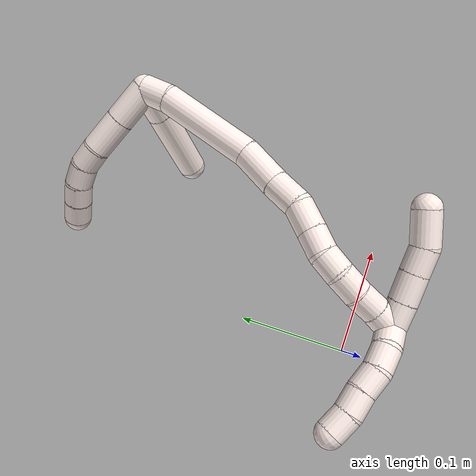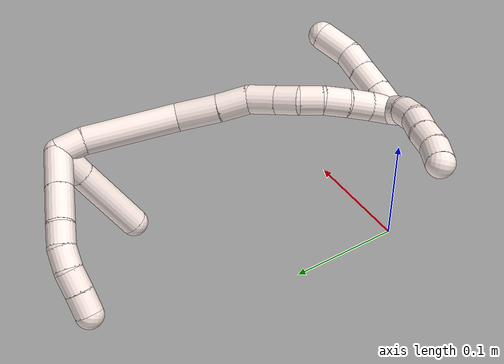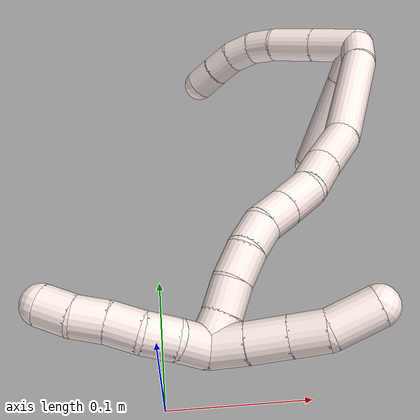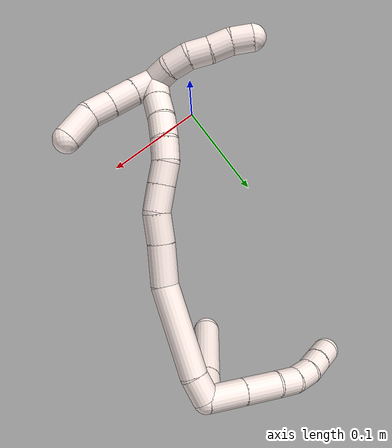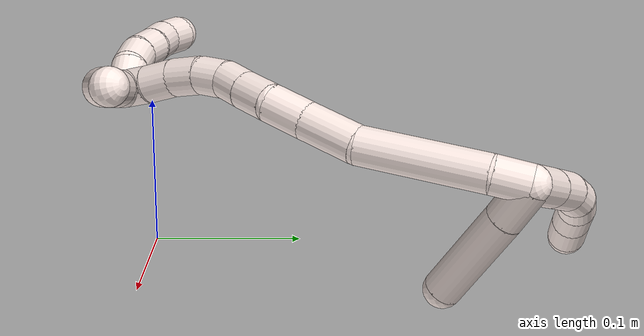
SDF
<sdf version="1.7">
 <world name="default">
  <model name="11">
   <static>0</static>
   <link name="11">
    <collision name="collision-cylinder-e_1_2_8">
     <pose>-0.011019 0.013648 -0.00313 -1.79625 -0.666743 0.820136</pose>
     <geometry><cylinder><radius>0.0125</radius><length>0.035637</length></cylinder></geometry>
     <surface>
      <friction><ode><mu>1.16</mu><mu2>1.16</mu2><slip1>0</slip1><slip2>0</slip2></ode></friction>
      <contact><ode><kp>1e+06</kp><kd>1</kd><max_vel>0</max_vel><min_depth>0.001</min_depth></ode></contact>
     </surface>
    </collision>
    <visual name="visual-cylinder-e_1_2_8">
     <pose>-0.011019 0.013648 -0.00313 -1.79625 -0.666743 0.820136</pose>
     <geometry><cylinder><radius>0.0125</radius><length>0.035637</length></cylinder></geometry>
     <material><ambient>1 0.933333 0.909804 1</ambient></material>
    </visual>
    <collision name="collision-cylinder-e_2_8_9">
     <pose>-0.032468 0.04028 -0.009276 -1.79899 -0.663901 0.818827</pose>
     <geometry><cylinder><radius>0.0125</radius><length>0.03385</length></cylinder></geometry>
     <surface>
      <friction><ode><mu>1.16</mu><mu2>1.16</mu2><slip1>0</slip1><slip2>0</slip2></ode></friction>
      <contact><ode><kp>1e+06</kp><kd>1</kd><max_vel>0</max_vel><min_depth>0.001</min_depth></ode></contact>
     </surface>
    </collision>
    <visual name="visual-cylinder-e_2_8_9">
     <pose>-0.032468 0.04028 -0.009276 -1.79899 -0.663901 0.818827</pose>
     <geometry><cylinder><radius>0.0125</radius><length>0.03385</length></cylinder></geometry>
     <material><ambient>1 0.933333 0.909804 1</ambient></material>
    </visual>
    <collision name="collision-cylinder-e_3_9_10">
     <pose>-0.047701 0.06197 -0.01444 -1.81282 -0.491853 0.620328</pose>
     <geometry><cylinder><radius>0.0125</radius><length>0.020344</length></cylinder></geometry>
     <surface>
      <friction><ode><mu>1.16</mu><mu2>1.16</mu2><slip1>0</slip1><slip2>0</slip2></ode></friction>
      <contact><ode><kp>1e+06</kp><kd>1</kd><max_vel>0</max_vel><min_depth>0.001</min_depth></ode></contact>
     </surface>
    </collision>
    <visual name="visual-cylinder-e_3_9_10">
     <pose>-0.047701 0.06197 -0.01444 -1.81282 -0.491853 0.620328</pose>
     <geometry><cylinder><radius>0.0125</radius><length>0.020344</length></cylinder></geometry>
     <material><ambient>1 0.933333 0.909804 1</ambient></material>
    </visual>
    <collision name="collision-cylinder-e_4_10_11">
     <pose>-0.056095 0.078884 -0.021107 -2.07387 -0.365909 0.606695</pose>
     <geometry><cylinder><radius>0.0125</radius><length>0.020068</length></cylinder></geometry>
     <surface>
      <friction><ode><mu>1.16</mu><mu2>1.16</mu2><slip1>0</slip1><slip2>0</slip2></ode></friction>
      <contact><ode><kp>1e+06</kp><kd>1</kd><max_vel>0</max_vel><min_depth>0.001</min_depth></ode></contact>
     </surface>
    </collision>
    <visual name="visual-cylinder-e_4_10_11">
     <pose>-0.056095 0.078884 -0.021107 -2.07387 -0.365909 0.606695</pose>
     <geometry><cylinder><radius>0.0125</radius><length>0.020068</length></cylinder></geometry>
     <material><ambient>1 0.933333 0.909804 1</ambient></material>
    </visual>
    <collision name="collision-cylinder-e_5_11_12">
     <pose>-0.061326 0.094962 -0.031598 -2.22017 -0.164601 0.329374</pose>
     <geometry><cylinder><radius>0.0125</radius><length>0.020031</length></cylinder></geometry>
     <surface>
      <friction><ode><mu>1.16</mu><mu2>1.16</mu2><slip1>0</slip1><slip2>0</slip2></ode></friction>
      <contact><ode><kp>1e+06</kp><kd>1</kd><max_vel>0</max_vel><min_depth>0.001</min_depth></ode></contact>
     </surface>
    </collision>
    <visual name="visual-cylinder-e_5_11_12">
     <pose>-0.061326 0.094962 -0.031598 -2.22017 -0.164601 0.329374</pose>
     <geometry><cylinder><radius>0.0125</radius><length>0.020031</length></cylinder></geometry>
     <material><ambient>1 0.933333 0.909804 1</ambient></material>
    </visual>
    <collision name="collision-cylinder-e_6_12_6">
     <pose>-0.064215 0.110938 -0.043354 -2.19027 -0.124706 0.241232</pose>
     <geometry><cylinder><radius>0.0125</radius><length>0.02007</length></cylinder></geometry>
     <surface>
      <friction><ode><mu>1.16</mu><mu2>1.16</mu2><slip1>0</slip1><slip2>0</slip2></ode></friction>
      <contact><ode><kp>1e+06</kp><kd>1</kd><max_vel>0</max_vel><min_depth>0.001</min_depth></ode></contact>
     </surface>
    </collision>
    <visual name="visual-cylinder-e_6_12_6">
     <pose>-0.064215 0.110938 -0.043354 -2.19027 -0.124706 0.241232</pose>
     <geometry><cylinder><radius>0.0125</radius><length>0.02007</length></cylinder></geometry>
     <material><ambient>1 0.933333 0.909804 1</ambient></material>
    </visual>
    <collision name="collision-cylinder-e_1_2_13">
     <pose>0.004868 0.008222 -0.011779 -2.53219 0.326715 -0.965474</pose>
     <geometry><cylinder><radius>0.0125</radius><length>0.030334</length></cylinder></geometry>
     <surface>
      <friction><ode><mu>1.16</mu><mu2>1.16</mu2><slip1>0</slip1><slip2>0</slip2></ode></friction>
      <contact><ode><kp>1e+06</kp><kd>1</kd><max_vel>0</max_vel><min_depth>0.001</min_depth></ode></contact>
     </surface>
    </collision>
    <visual name="visual-cylinder-e_1_2_13">
     <pose>0.004868 0.008222 -0.011779 -2.53219 0.326715 -0.965474</pose>
     <geometry><cylinder><radius>0.0125</radius><length>0.030334</length></cylinder></geometry>
     <material><ambient>1 0.933333 0.909804 1</ambient></material>
    </visual>
    <collision name="collision-cylinder-e_2_13_5">
     <pose>0.020045 0.034821 -0.051295 -2.55645 0.300474 -0.931386</pose>
     <geometry><cylinder><radius>0.0125</radius><length>0.069666</length></cylinder></geometry>
     <surface>
      <friction><ode><mu>1.16</mu><mu2>1.16</mu2><slip1>0</slip1><slip2>0</slip2></ode></friction>
      <contact><ode><kp>1e+06</kp><kd>1</kd><max_vel>0</max_vel><min_depth>0.001</min_depth></ode></contact>
     </surface>
    </collision>
    <visual name="visual-cylinder-e_2_13_5">
     <pose>0.020045 0.034821 -0.051295 -2.55645 0.300474 -0.931386</pose>
     <geometry><cylinder><radius>0.0125</radius><length>0.069666</length></cylinder></geometry>
     <material><ambient>1 0.933333 0.909804 1</ambient></material>
    </visual>
    <collision name="collision-cylinder-e_1_2_14">
     <pose>0.001077 -0.006911 -0.009638 2.51952 0.090595 0.280157</pose>
     <geometry><cylinder><radius>0.0125</radius><length>0.023818</length></cylinder></geometry>
     <surface>
      <friction><ode><mu>1.16</mu><mu2>1.16</mu2><slip1>0</slip1><slip2>0</slip2></ode></friction>
      <contact><ode><kp>1e+06</kp><kd>1</kd><max_vel>0</max_vel><min_depth>0.001</min_depth></ode></contact>
     </surface>
    </collision>
    <visual name="visual-cylinder-e_1_2_14">
     <pose>0.001077 -0.006911 -0.009638 2.51952 0.090595 0.280157</pose>
     <geometry><cylinder><radius>0.0125</radius><length>0.023818</length></cylinder></geometry>
     <material><ambient>1 0.933333 0.909804 1</ambient></material>
    </visual>
    <collision name="collision-cylinder-e_2_14_15">
     <pose>0.001856 -0.031863 -0.057088 2.69642 -0.007122 -0.031463</pose>
     <geometry><cylinder><radius>0.0125</radius><length>0.083792</length></cylinder></geometry>
     <surface>
      <friction><ode><mu>1.16</mu><mu2>1.16</mu2><slip1>0</slip1><slip2>0</slip2></ode></friction>
      <contact><ode><kp>1e+06</kp><kd>1</kd><max_vel>0</max_vel><min_depth>0.001</min_depth></ode></contact>
     </surface>
    </collision>
    <visual name="visual-cylinder-e_2_14_15">
     <pose>0.001856 -0.031863 -0.057088 2.69642 -0.007122 -0.031463</pose>
     <geometry><cylinder><radius>0.0125</radius><length>0.083792</length></cylinder></geometry>
     <material><ambient>1 0.933333 0.909804 1</ambient></material>
    </visual>
    <collision name="collision-cylinder-e_3_15_16">
     <pose>-0.003618 -0.057759 -0.111261 2.69397 -0.27783 -1.10165</pose>
     <geometry><cylinder><radius>0.0125</radius><length>0.037746</length></cylinder></geometry>
     <surface>
      <friction><ode><mu>1.16</mu><mu2>1.16</mu2><slip1>0</slip1><slip2>0</slip2></ode></friction>
      <contact><ode><kp>1e+06</kp><kd>1</kd><max_vel>0</max_vel><min_depth>0.001</min_depth></ode></contact>
     </surface>
    </collision>
    <visual name="visual-cylinder-e_3_15_16">
     <pose>-0.003618 -0.057759 -0.111261 2.69397 -0.27783 -1.10165</pose>
     <geometry><cylinder><radius>0.0125</radius><length>0.037746</length></cylinder></geometry>
     <material><ambient>1 0.933333 0.909804 1</ambient></material>
    </visual>
    <collision name="collision-cylinder-e_4_16_17">
     <pose>-0.012107 -0.072092 -0.139172 2.63045 -0.245142 -0.881129</pose>
     <geometry><cylinder><radius>0.0125</radius><length>0.0273</length></cylinder></geometry>
     <surface>
      <friction><ode><mu>1.16</mu><mu2>1.16</mu2><slip1>0</slip1><slip2>0</slip2></ode></friction>
      <contact><ode><kp>1e+06</kp><kd>1</kd><max_vel>0</max_vel><min_depth>0.001</min_depth></ode></contact>
     </surface>
    </collision>
    <visual name="visual-cylinder-e_4_16_17">
     <pose>-0.012107 -0.072092 -0.139172 2.63045 -0.245142 -0.881129</pose>
     <geometry><cylinder><radius>0.0125</radius><length>0.0273</length></cylinder></geometry>
     <material><ambient>1 0.933333 0.909804 1</ambient></material>
    </visual>
    <collision name="collision-cylinder-e_5_17_18">
     <pose>-0.020545 -0.080862 -0.1616 2.9339 -0.431928 -2.2546</pose>
     <geometry><cylinder><radius>0.0125</radius><length>0.024482</length></cylinder></geometry>
     <surface>
      <friction><ode><mu>1.16</mu><mu2>1.16</mu2><slip1>0</slip1><slip2>0</slip2></ode></friction>
      <contact><ode><kp>1e+06</kp><kd>1</kd><max_vel>0</max_vel><min_depth>0.001</min_depth></ode></contact>
     </surface>
    </collision>
    <visual name="visual-cylinder-e_5_17_18">
     <pose>-0.020545 -0.080862 -0.1616 2.9339 -0.431928 -2.2546</pose>
     <geometry><cylinder><radius>0.0125</radius><length>0.024482</length></cylinder></geometry>
     <material><ambient>1 0.933333 0.909804 1</ambient></material>
    </visual>
    <collision name="collision-cylinder-e_6_18_19">
     <pose>-0.03021 -0.085084 -0.181376 2.92807 -0.462621 -2.28755</pose>
     <geometry><cylinder><radius>0.0125</radius><length>0.02035</length></cylinder></geometry>
     <surface>
      <friction><ode><mu>1.16</mu><mu2>1.16</mu2><slip1>0</slip1><slip2>0</slip2></ode></friction>
      <contact><ode><kp>1e+06</kp><kd>1</kd><max_vel>0</max_vel><min_depth>0.001</min_depth></ode></contact>
     </surface>
    </collision>
    <visual name="visual-cylinder-e_6_18_19">
     <pose>-0.03021 -0.085084 -0.181376 2.92807 -0.462621 -2.28755</pose>
     <geometry><cylinder><radius>0.0125</radius><length>0.02035</length></cylinder></geometry>
     <material><ambient>1 0.933333 0.909804 1</ambient></material>
    </visual>
    <collision name="collision-cylinder-e_7_19_20">
     <pose>-0.03634 -0.089197 -0.199969 2.92004 -0.158534 -1.24029</pose>
     <geometry><cylinder><radius>0.0125</radius><length>0.020126</length></cylinder></geometry>
     <surface>
      <friction><ode><mu>1.16</mu><mu2>1.16</mu2><slip1>0</slip1><slip2>0</slip2></ode></friction>
      <contact><ode><kp>1e+06</kp><kd>1</kd><max_vel>0</max_vel><min_depth>0.001</min_depth></ode></contact>
     </surface>
    </collision>
    <visual name="visual-cylinder-e_7_19_20">
     <pose>-0.03634 -0.089197 -0.199969 2.92004 -0.158534 -1.24029</pose>
     <geometry><cylinder><radius>0.0125</radius><length>0.020126</length></cylinder></geometry>
     <material><ambient>1 0.933333 0.909804 1</ambient></material>
    </visual>
    <collision name="collision-cylinder-e_8_20_21">
     <pose>-0.037778 -0.092379 -0.220428 3.04915 0.013902 0.298313</pose>
     <geometry><cylinder><radius>0.0125</radius><length>0.021624</length></cylinder></geometry>
     <surface>
      <friction><ode><mu>1.16</mu><mu2>1.16</mu2><slip1>0</slip1><slip2>0</slip2></ode></friction>
      <contact><ode><kp>1e+06</kp><kd>1</kd><max_vel>0</max_vel><min_depth>0.001</min_depth></ode></contact>
     </surface>
    </collision>
    <visual name="visual-cylinder-e_8_20_21">
     <pose>-0.037778 -0.092379 -0.220428 3.04915 0.013902 0.298313</pose>
     <geometry><cylinder><radius>0.0125</radius><length>0.021624</length></cylinder></geometry>
     <material><ambient>1 0.933333 0.909804 1</ambient></material>
    </visual>
    <collision name="collision-cylinder-e_9_21_22">
     <pose>-0.035922 -0.093841 -0.241382 3.09606 0.165702 2.60629</pose>
     <geometry><cylinder><radius>0.0125</radius><length>0.020683</length></cylinder></geometry>
     <surface>
      <friction><ode><mu>1.16</mu><mu2>1.16</mu2><slip1>0</slip1><slip2>0</slip2></ode></friction>
      <contact><ode><kp>1e+06</kp><kd>1</kd><max_vel>0</max_vel><min_depth>0.001</min_depth></ode></contact>
     </surface>
    </collision>
    <visual name="visual-cylinder-e_9_21_22">
     <pose>-0.035922 -0.093841 -0.241382 3.09606 0.165702 2.60629</pose>
     <geometry><cylinder><radius>0.0125</radius><length>0.020683</length></cylinder></geometry>
     <material><ambient>1 0.933333 0.909804 1</ambient></material>
    </visual>
    <collision name="collision-cylinder-e_10_22_1">
     <pose>-0.033609 -0.094632 -0.261587 3.10901 0.060482 2.15351</pose>
     <geometry><cylinder><radius>0.0125</radius><length>0.020078</length></cylinder></geometry>
     <surface>
      <friction><ode><mu>1.16</mu><mu2>1.16</mu2><slip1>0</slip1><slip2>0</slip2></ode></friction>
      <contact><ode><kp>1e+06</kp><kd>1</kd><max_vel>0</max_vel><min_depth>0.001</min_depth></ode></contact>
     </surface>
    </collision>
    <visual name="visual-cylinder-e_10_22_1">
     <pose>-0.033609 -0.094632 -0.261587 3.10901 0.060482 2.15351</pose>
     <geometry><cylinder><radius>0.0125</radius><length>0.020078</length></cylinder></geometry>
     <material><ambient>1 0.933333 0.909804 1</ambient></material>
    </visual>
    <collision name="collision-cylinder-e_1_1_23">
     <pose>-0.042603 -0.095988 -0.274203 2.76461 -1.28732 -2.64363</pose>
     <geometry><cylinder><radius>0.0125</radius><length>0.02</length></cylinder></geometry>
     <surface>
      <friction><ode><mu>1.16</mu><mu2>1.16</mu2><slip1>0</slip1><slip2>0</slip2></ode></friction>
      <contact><ode><kp>1e+06</kp><kd>1</kd><max_vel>0</max_vel><min_depth>0.001</min_depth></ode></contact>
     </surface>
    </collision>
    <visual name="visual-cylinder-e_1_1_23">
     <pose>-0.042603 -0.095988 -0.274203 2.76461 -1.28732 -2.64363</pose>
     <geometry><cylinder><radius>0.0125</radius><length>0.02</length></cylinder></geometry>
     <material><ambient>1 0.933333 0.909804 1</ambient></material>
    </visual>
    <collision name="collision-cylinder-e_2_23_24">
     <pose>-0.061574 -0.095001 -0.279658 -2.52677 -1.21372 2.28379</pose>
     <geometry><cylinder><radius>0.0125</radius><length>0.02</length></cylinder></geometry>
     <surface>
      <friction><ode><mu>1.16</mu><mu2>1.16</mu2><slip1>0</slip1><slip2>0</slip2></ode></friction>
      <contact><ode><kp>1e+06</kp><kd>1</kd><max_vel>0</max_vel><min_depth>0.001</min_depth></ode></contact>
     </surface>
    </collision>
    <visual name="visual-cylinder-e_2_23_24">
     <pose>-0.061574 -0.095001 -0.279658 -2.52677 -1.21372 2.28379</pose>
     <geometry><cylinder><radius>0.0125</radius><length>0.02</length></cylinder></geometry>
     <material><ambient>1 0.933333 0.909804 1</ambient></material>
    </visual>
    <collision name="collision-cylinder-e_3_24_25">
     <pose>-0.079688 -0.088417 -0.284144 -1.91354 -1.06438 1.39185</pose>
     <geometry><cylinder><radius>0.0125</radius><length>0.02</length></cylinder></geometry>
     <surface>
      <friction><ode><mu>1.16</mu><mu2>1.16</mu2><slip1>0</slip1><slip2>0</slip2></ode></friction>
      <contact><ode><kp>1e+06</kp><kd>1</kd><max_vel>0</max_vel><min_depth>0.001</min_depth></ode></contact>
     </surface>
    </collision>
    <visual name="visual-cylinder-e_3_24_25">
     <pose>-0.079688 -0.088417 -0.284144 -1.91354 -1.06438 1.39185</pose>
     <geometry><cylinder><radius>0.0125</radius><length>0.02</length></cylinder></geometry>
     <material><ambient>1 0.933333 0.909804 1</ambient></material>
    </visual>
    <collision name="collision-cylinder-e_4_25_26">
     <pose>-0.096994 -0.079599 -0.288716 -2.17635 -1.02767 1.64511</pose>
     <geometry><cylinder><radius>0.0125</radius><length>0.02</length></cylinder></geometry>
     <surface>
      <friction><ode><mu>1.16</mu><mu2>1.16</mu2><slip1>0</slip1><slip2>0</slip2></ode></friction>
      <contact><ode><kp>1e+06</kp><kd>1</kd><max_vel>0</max_vel><min_depth>0.001</min_depth></ode></contact>
     </surface>
    </collision>
    <visual name="visual-cylinder-e_4_25_26">
     <pose>-0.096994 -0.079599 -0.288716 -2.17635 -1.02767 1.64511</pose>
     <geometry><cylinder><radius>0.0125</radius><length>0.02</length></cylinder></geometry>
     <material><ambient>1 0.933333 0.909804 1</ambient></material>
    </visual>
    <collision name="collision-cylinder-e_5_26_4">
     <pose>-0.113868 -0.069899 -0.292741 -1.76693 -0.981565 1.15418</pose>
     <geometry><cylinder><radius>0.0125</radius><length>0.02</length></cylinder></geometry>
     <surface>
      <friction><ode><mu>1.16</mu><mu2>1.16</mu2><slip1>0</slip1><slip2>0</slip2></ode></friction>
      <contact><ode><kp>1e+06</kp><kd>1</kd><max_vel>0</max_vel><min_depth>0.001</min_depth></ode></contact>
     </surface>
    </collision>
    <visual name="visual-cylinder-e_5_26_4">
     <pose>-0.113868 -0.069899 -0.292741 -1.76693 -0.981565 1.15418</pose>
     <geometry><cylinder><radius>0.0125</radius><length>0.02</length></cylinder></geometry>
     <material><ambient>1 0.933333 0.909804 1</ambient></material>
    </visual>
    <collision name="collision-cylinder-e_1_1_27">
     <pose>-0.025634 -0.101555 -0.265913 0.85917 0.702073 0.332434</pose>
     <geometry><cylinder><radius>0.0125</radius><length>0.022819</length></cylinder></geometry>
     <surface>
      <friction><ode><mu>1.16</mu><mu2>1.16</mu2><slip1>0</slip1><slip2>0</slip2></ode></friction>
      <contact><ode><kp>1e+06</kp><kd>1</kd><max_vel>0</max_vel><min_depth>0.001</min_depth></ode></contact>
     </surface>
    </collision>
    <visual name="visual-cylinder-e_1_1_27">
     <pose>-0.025634 -0.101555 -0.265913 0.85917 0.702073 0.332434</pose>
     <geometry><cylinder><radius>0.0125</radius><length>0.022819</length></cylinder></geometry>
     <material><ambient>1 0.933333 0.909804 1</ambient></material>
    </visual>
    <collision name="collision-cylinder-e_2_27_28">
     <pose>-0.010431 -0.115047 -0.253611 0.806264 0.686839 0.302684</pose>
     <geometry><cylinder><radius>0.0125</radius><length>0.024712</length></cylinder></geometry>
     <surface>
      <friction><ode><mu>1.16</mu><mu2>1.16</mu2><slip1>0</slip1><slip2>0</slip2></ode></friction>
      <contact><ode><kp>1e+06</kp><kd>1</kd><max_vel>0</max_vel><min_depth>0.001</min_depth></ode></contact>
     </surface>
    </collision>
    <visual name="visual-cylinder-e_2_27_28">
     <pose>-0.010431 -0.115047 -0.253611 0.806264 0.686839 0.302684</pose>
     <geometry><cylinder><radius>0.0125</radius><length>0.024712</length></cylinder></geometry>
     <material><ambient>1 0.933333 0.909804 1</ambient></material>
    </visual>
    <collision name="collision-cylinder-e_3_28_29">
     <pose>0.004234 -0.128342 -0.24113 0.828749 0.666598 0.302238</pose>
     <geometry><cylinder><radius>0.0125</radius><length>0.022093</length></cylinder></geometry>
     <surface>
      <friction><ode><mu>1.16</mu><mu2>1.16</mu2><slip1>0</slip1><slip2>0</slip2></ode></friction>
      <contact><ode><kp>1e+06</kp><kd>1</kd><max_vel>0</max_vel><min_depth>0.001</min_depth></ode></contact>
     </surface>
    </collision>
    <visual name="visual-cylinder-e_3_28_29">
     <pose>0.004234 -0.128342 -0.24113 0.828749 0.666598 0.302238</pose>
     <geometry><cylinder><radius>0.0125</radius><length>0.022093</length></cylinder></geometry>
     <material><ambient>1 0.933333 0.909804 1</ambient></material>
    </visual>
    <collision name="collision-cylinder-e_4_29_3">
     <pose>0.018671 -0.140471 -0.223431 0.45097 0.52454 0.123003</pose>
     <geometry><cylinder><radius>0.0125</radius><length>0.030376</length></cylinder></geometry>
     <surface>
      <friction><ode><mu>1.16</mu><mu2>1.16</mu2><slip1>0</slip1><slip2>0</slip2></ode></friction>
      <contact><ode><kp>1e+06</kp><kd>1</kd><max_vel>0</max_vel><min_depth>0.001</min_depth></ode></contact>
     </surface>
    </collision>
    <visual name="visual-cylinder-e_4_29_3">
     <pose>0.018671 -0.140471 -0.223431 0.45097 0.52454 0.123003</pose>
     <geometry><cylinder><radius>0.0125</radius><length>0.030376</length></cylinder></geometry>
     <material><ambient>1 0.933333 0.909804 1</ambient></material>
    </visual>
    <collision name="collision-sphere-3">
     <pose>0.026277 -0.1462 -0.211599 0 -0 0</pose>
     <geometry><sphere><radius>0.0125</radius></sphere></geometry>
     <surface>
      <friction><ode><mu>1.16</mu><mu2>1.16</mu2><slip1>0</slip1><slip2>0</slip2></ode></friction>
      <contact><ode><kp>1e+06</kp><kd>1</kd><max_vel>0</max_vel><min_depth>0.001</min_depth></ode></contact>
     </surface>
    </collision>
    <visual name="visual-sphere-3">
     <pose>0.026277 -0.1462 -0.211599 0 -0 0</pose>
     <geometry><sphere><radius>0.0125</radius></sphere></geometry>
     <material><ambient>1 0.933333 0.909804 1</ambient></material>
    </visual>
    <collision name="collision-sphere-29">
     <pose>0.011064 -0.134741 -0.235263 0 -0 0</pose>
     <geometry><sphere><radius>0.0125</radius></sphere></geometry>
     <surface>
      <friction><ode><mu>1.16</mu><mu2>1.16</mu2><slip1>0</slip1><slip2>0</slip2></ode></friction>
      <contact><ode><kp>1e+06</kp><kd>1</kd><max_vel>0</max_vel><min_depth>0.001</min_depth></ode></contact>
     </surface>
    </collision>
    <visual name="visual-sphere-29">
     <pose>0.011064 -0.134741 -0.235263 0 -0 0</pose>
     <geometry><sphere><radius>0.0125</radius></sphere></geometry>
     <material><ambient>1 0.933333 0.909804 1</ambient></material>
    </visual>
    <collision name="collision-sphere-28">
     <pose>-0.002596 -0.121943 -0.246997 0 -0 0</pose>
     <geometry><sphere><radius>0.0125</radius></sphere></geometry>
     <surface>
      <friction><ode><mu>1.16</mu><mu2>1.16</mu2><slip1>0</slip1><slip2>0</slip2></ode></friction>
      <contact><ode><kp>1e+06</kp><kd>1</kd><max_vel>0</max_vel><min_depth>0.001</min_depth></ode></contact>
     </surface>
    </collision>
    <visual name="visual-sphere-28">
     <pose>-0.002596 -0.121943 -0.246997 0 -0 0</pose>
     <geometry><sphere><radius>0.0125</radius></sphere></geometry>
     <material><ambient>1 0.933333 0.909804 1</ambient></material>
    </visual>
    <collision name="collision-sphere-27">
     <pose>-0.018266 -0.108152 -0.260224 0 -0 0</pose>
     <geometry><sphere><radius>0.0125</radius></sphere></geometry>
     <surface>
      <friction><ode><mu>1.16</mu><mu2>1.16</mu2><slip1>0</slip1><slip2>0</slip2></ode></friction>
      <contact><ode><kp>1e+06</kp><kd>1</kd><max_vel>0</max_vel><min_depth>0.001</min_depth></ode></contact>
     </surface>
    </collision>
    <visual name="visual-sphere-27">
     <pose>-0.018266 -0.108152 -0.260224 0 -0 0</pose>
     <geometry><sphere><radius>0.0125</radius></sphere></geometry>
     <material><ambient>1 0.933333 0.909804 1</ambient></material>
    </visual>
    <collision name="collision-sphere-4">
     <pose>-0.122182 -0.064449 -0.293824 0 -0 0</pose>
     <geometry><sphere><radius>0.0125</radius></sphere></geometry>
     <surface>
      <friction><ode><mu>1.16</mu><mu2>1.16</mu2><slip1>0</slip1><slip2>0</slip2></ode></friction>
      <contact><ode><kp>1e+06</kp><kd>1</kd><max_vel>0</max_vel><min_depth>0.001</min_depth></ode></contact>
     </surface>
    </collision>
    <visual name="visual-sphere-4">
     <pose>-0.122182 -0.064449 -0.293824 0 -0 0</pose>
     <geometry><sphere><radius>0.0125</radius></sphere></geometry>
     <material><ambient>1 0.933333 0.909804 1</ambient></material>
    </visual>
    <collision name="collision-sphere-26">
     <pose>-0.105555 -0.07535 -0.291658 0 -0 0</pose>
     <geometry><sphere><radius>0.0125</radius></sphere></geometry>
     <surface>
      <friction><ode><mu>1.16</mu><mu2>1.16</mu2><slip1>0</slip1><slip2>0</slip2></ode></friction>
      <contact><ode><kp>1e+06</kp><kd>1</kd><max_vel>0</max_vel><min_depth>0.001</min_depth></ode></contact>
     </surface>
    </collision>
    <visual name="visual-sphere-26">
     <pose>-0.105555 -0.07535 -0.291658 0 -0 0</pose>
     <geometry><sphere><radius>0.0125</radius></sphere></geometry>
     <material><ambient>1 0.933333 0.909804 1</ambient></material>
    </visual>
    <collision name="collision-sphere-25">
     <pose>-0.088433 -0.083848 -0.285774 0 -0 0</pose>
     <geometry><sphere><radius>0.0125</radius></sphere></geometry>
     <surface>
      <friction><ode><mu>1.16</mu><mu2>1.16</mu2><slip1>0</slip1><slip2>0</slip2></ode></friction>
      <contact><ode><kp>1e+06</kp><kd>1</kd><max_vel>0</max_vel><min_depth>0.001</min_depth></ode></contact>
     </surface>
    </collision>
    <visual name="visual-sphere-25">
     <pose>-0.088433 -0.083848 -0.285774 0 -0 0</pose>
     <geometry><sphere><radius>0.0125</radius></sphere></geometry>
     <material><ambient>1 0.933333 0.909804 1</ambient></material>
    </visual>
    <collision name="collision-sphere-24">
     <pose>-0.070943 -0.092985 -0.282514 0 -0 0</pose>
     <geometry><sphere><radius>0.0125</radius></sphere></geometry>
     <surface>
      <friction><ode><mu>1.16</mu><mu2>1.16</mu2><slip1>0</slip1><slip2>0</slip2></ode></friction>
      <contact><ode><kp>1e+06</kp><kd>1</kd><max_vel>0</max_vel><min_depth>0.001</min_depth></ode></contact>
     </surface>
    </collision>
    <visual name="visual-sphere-24">
     <pose>-0.070943 -0.092985 -0.282514 0 -0 0</pose>
     <geometry><sphere><radius>0.0125</radius></sphere></geometry>
     <material><ambient>1 0.933333 0.909804 1</ambient></material>
    </visual>
    <collision name="collision-sphere-23">
     <pose>-0.052204 -0.097017 -0.276803 0 -0 0</pose>
     <geometry><sphere><radius>0.0125</radius></sphere></geometry>
     <surface>
      <friction><ode><mu>1.16</mu><mu2>1.16</mu2><slip1>0</slip1><slip2>0</slip2></ode></friction>
      <contact><ode><kp>1e+06</kp><kd>1</kd><max_vel>0</max_vel><min_depth>0.001</min_depth></ode></contact>
     </surface>
    </collision>
    <visual name="visual-sphere-23">
     <pose>-0.052204 -0.097017 -0.276803 0 -0 0</pose>
     <geometry><sphere><radius>0.0125</radius></sphere></geometry>
     <material><ambient>1 0.933333 0.909804 1</ambient></material>
    </visual>
    <collision name="collision-sphere-1">
     <pose>-0.033003 -0.094958 -0.271602 0 -0 0</pose>
     <geometry><sphere><radius>0.0125</radius></sphere></geometry>
     <surface>
      <friction><ode><mu>1.16</mu><mu2>1.16</mu2><slip1>0</slip1><slip2>0</slip2></ode></friction>
      <contact><ode><kp>1e+06</kp><kd>1</kd><max_vel>0</max_vel><min_depth>0.001</min_depth></ode></contact>
     </surface>
    </collision>
    <visual name="visual-sphere-1">
     <pose>-0.033003 -0.094958 -0.271602 0 -0 0</pose>
     <geometry><sphere><radius>0.0125</radius></sphere></geometry>
     <material><ambient>1 0.933333 0.909804 1</ambient></material>
    </visual>
    <collision name="collision-sphere-22">
     <pose>-0.034216 -0.094305 -0.251571 0 -0 0</pose>
     <geometry><sphere><radius>0.0125</radius></sphere></geometry>
     <surface>
      <friction><ode><mu>1.16</mu><mu2>1.16</mu2><slip1>0</slip1><slip2>0</slip2></ode></friction>
      <contact><ode><kp>1e+06</kp><kd>1</kd><max_vel>0</max_vel><min_depth>0.001</min_depth></ode></contact>
     </surface>
    </collision>
    <visual name="visual-sphere-22">
     <pose>-0.034216 -0.094305 -0.251571 0 -0 0</pose>
     <geometry><sphere><radius>0.0125</radius></sphere></geometry>
     <material><ambient>1 0.933333 0.909804 1</ambient></material>
    </visual>
    <collision name="collision-sphere-21">
     <pose>-0.037628 -0.093377 -0.231193 0 -0 0</pose>
     <geometry><sphere><radius>0.0125</radius></sphere></geometry>
     <surface>
      <friction><ode><mu>1.16</mu><mu2>1.16</mu2><slip1>0</slip1><slip2>0</slip2></ode></friction>
      <contact><ode><kp>1e+06</kp><kd>1</kd><max_vel>0</max_vel><min_depth>0.001</min_depth></ode></contact>
     </surface>
    </collision>
    <visual name="visual-sphere-21">
     <pose>-0.037628 -0.093377 -0.231193 0 -0 0</pose>
     <geometry><sphere><radius>0.0125</radius></sphere></geometry>
     <material><ambient>1 0.933333 0.909804 1</ambient></material>
    </visual>
    <collision name="collision-sphere-12">
     <pose>-0.062967 0.102831 -0.037573 0 -0 0</pose>
     <geometry><sphere><radius>0.0125</radius></sphere></geometry>
     <surface>
      <friction><ode><mu>1.16</mu><mu2>1.16</mu2><slip1>0</slip1><slip2>0</slip2></ode></friction>
      <contact><ode><kp>1e+06</kp><kd>1</kd><max_vel>0</max_vel><min_depth>0.001</min_depth></ode></contact>
     </surface>
    </collision>
    <visual name="visual-sphere-12">
     <pose>-0.062967 0.102831 -0.037573 0 -0 0</pose>
     <geometry><sphere><radius>0.0125</radius></sphere></geometry>
     <material><ambient>1 0.933333 0.909804 1</ambient></material>
    </visual>
    <collision name="collision-sphere-11">
     <pose>-0.059685 0.087092 -0.025624 0 -0 0</pose>
     <geometry><sphere><radius>0.0125</radius></sphere></geometry>
     <surface>
      <friction><ode><mu>1.16</mu><mu2>1.16</mu2><slip1>0</slip1><slip2>0</slip2></ode></friction>
      <contact><ode><kp>1e+06</kp><kd>1</kd><max_vel>0</max_vel><min_depth>0.001</min_depth></ode></contact>
     </surface>
    </collision>
    <visual name="visual-sphere-11">
     <pose>-0.059685 0.087092 -0.025624 0 -0 0</pose>
     <geometry><sphere><radius>0.0125</radius></sphere></geometry>
     <material><ambient>1 0.933333 0.909804 1</ambient></material>
    </visual>
    <collision name="collision-sphere-10">
     <pose>-0.052505 0.070675 -0.016589 0 -0 0</pose>
     <geometry><sphere><radius>0.0125</radius></sphere></geometry>
     <surface>
      <friction><ode><mu>1.16</mu><mu2>1.16</mu2><slip1>0</slip1><slip2>0</slip2></ode></friction>
      <contact><ode><kp>1e+06</kp><kd>1</kd><max_vel>0</max_vel><min_depth>0.001</min_depth></ode></contact>
     </surface>
    </collision>
    <visual name="visual-sphere-10">
     <pose>-0.052505 0.070675 -0.016589 0 -0 0</pose>
     <geometry><sphere><radius>0.0125</radius></sphere></geometry>
     <material><ambient>1 0.933333 0.909804 1</ambient></material>
    </visual>
    <collision name="collision-sphere-9">
     <pose>-0.042897 0.053265 -0.012291 0 -0 0</pose>
     <geometry><sphere><radius>0.0125</radius></sphere></geometry>
     <surface>
      <friction><ode><mu>1.16</mu><mu2>1.16</mu2><slip1>0</slip1><slip2>0</slip2></ode></friction>
      <contact><ode><kp>1e+06</kp><kd>1</kd><max_vel>0</max_vel><min_depth>0.001</min_depth></ode></contact>
     </surface>
    </collision>
    <visual name="visual-sphere-9">
     <pose>-0.042897 0.053265 -0.012291 0 -0 0</pose>
     <geometry><sphere><radius>0.0125</radius></sphere></geometry>
     <material><ambient>1 0.933333 0.909804 1</ambient></material>
    </visual>
    <collision name="collision-sphere-2">
     <geometry><sphere><radius>0.0125</radius></sphere></geometry>
     <surface>
      <friction><ode><mu>1.16</mu><mu2>1.16</mu2><slip1>0</slip1><slip2>0</slip2></ode></friction>
      <contact><ode><kp>1e+06</kp><kd>1</kd><max_vel>0</max_vel><min_depth>0.001</min_depth></ode></contact>
     </surface>
    </collision>
    <visual name="visual-sphere-2">
     <geometry><sphere><radius>0.0125</radius></sphere></geometry>
     <material><ambient>1 0.933333 0.909804 1</ambient></material>
    </visual>
    <collision name="collision-sphere-19">
     <pose>-0.034751 -0.087013 -0.190275 0 -0 0</pose>
     <geometry><sphere><radius>0.0125</radius></sphere></geometry>
     <surface>
      <friction><ode><mu>1.16</mu><mu2>1.16</mu2><slip1>0</slip1><slip2>0</slip2></ode></friction>
      <contact><ode><kp>1e+06</kp><kd>1</kd><max_vel>0</max_vel><min_depth>0.001</min_depth></ode></contact>
     </surface>
    </collision>
    <visual name="visual-sphere-19">
     <pose>-0.034751 -0.087013 -0.190275 0 -0 0</pose>
     <geometry><sphere><radius>0.0125</radius></sphere></geometry>
     <material><ambient>1 0.933333 0.909804 1</ambient></material>
    </visual>
    <collision name="collision-sphere-8">
     <pose>-0.022039 0.027296 -0.00626 0 -0 0</pose>
     <geometry><sphere><radius>0.0125</radius></sphere></geometry>
     <surface>
      <friction><ode><mu>1.16</mu><mu2>1.16</mu2><slip1>0</slip1><slip2>0</slip2></ode></friction>
      <contact><ode><kp>1e+06</kp><kd>1</kd><max_vel>0</max_vel><min_depth>0.001</min_depth></ode></contact>
     </surface>
    </collision>
    <visual name="visual-sphere-8">
     <pose>-0.022039 0.027296 -0.00626 0 -0 0</pose>
     <geometry><sphere><radius>0.0125</radius></sphere></geometry>
     <material><ambient>1 0.933333 0.909804 1</ambient></material>
    </visual>
    <collision name="collision-sphere-6">
     <pose>-0.065464 0.119045 -0.049135 0 -0 0</pose>
     <geometry><sphere><radius>0.0125</radius></sphere></geometry>
     <surface>
      <friction><ode><mu>1.16</mu><mu2>1.16</mu2><slip1>0</slip1><slip2>0</slip2></ode></friction>
      <contact><ode><kp>1e+06</kp><kd>1</kd><max_vel>0</max_vel><min_depth>0.001</min_depth></ode></contact>
     </surface>
    </collision>
    <visual name="visual-sphere-6">
     <pose>-0.065464 0.119045 -0.049135 0 -0 0</pose>
     <geometry><sphere><radius>0.0125</radius></sphere></geometry>
     <material><ambient>1 0.933333 0.909804 1</ambient></material>
    </visual>
    <collision name="collision-sphere-13">
     <pose>0.009735 0.016444 -0.023558 0 -0 0</pose>
     <geometry><sphere><radius>0.0125</radius></sphere></geometry>
     <surface>
      <friction><ode><mu>1.16</mu><mu2>1.16</mu2><slip1>0</slip1><slip2>0</slip2></ode></friction>
      <contact><ode><kp>1e+06</kp><kd>1</kd><max_vel>0</max_vel><min_depth>0.001</min_depth></ode></contact>
     </surface>
    </collision>
    <visual name="visual-sphere-13">
     <pose>0.009735 0.016444 -0.023558 0 -0 0</pose>
     <geometry><sphere><radius>0.0125</radius></sphere></geometry>
     <material><ambient>1 0.933333 0.909804 1</ambient></material>
    </visual>
    <collision name="collision-sphere-5">
     <pose>0.030354 0.053198 -0.079032 0 -0 0</pose>
     <geometry><sphere><radius>0.0125</radius></sphere></geometry>
     <surface>
      <friction><ode><mu>1.16</mu><mu2>1.16</mu2><slip1>0</slip1><slip2>0</slip2></ode></friction>
      <contact><ode><kp>1e+06</kp><kd>1</kd><max_vel>0</max_vel><min_depth>0.001</min_depth></ode></contact>
     </surface>
    </collision>
    <visual name="visual-sphere-5">
     <pose>0.030354 0.053198 -0.079032 0 -0 0</pose>
     <geometry><sphere><radius>0.0125</radius></sphere></geometry>
     <material><ambient>1 0.933333 0.909804 1</ambient></material>
    </visual>
    <collision name="collision-sphere-14">
     <pose>0.002155 -0.013822 -0.019277 0 -0 0</pose>
     <geometry><sphere><radius>0.0125</radius></sphere></geometry>
     <surface>
      <friction><ode><mu>1.16</mu><mu2>1.16</mu2><slip1>0</slip1><slip2>0</slip2></ode></friction>
      <contact><ode><kp>1e+06</kp><kd>1</kd><max_vel>0</max_vel><min_depth>0.001</min_depth></ode></contact>
     </surface>
    </collision>
    <visual name="visual-sphere-14">
     <pose>0.002155 -0.013822 -0.019277 0 -0 0</pose>
     <geometry><sphere><radius>0.0125</radius></sphere></geometry>
     <material><ambient>1 0.933333 0.909804 1</ambient></material>
    </visual>
    <collision name="collision-sphere-15">
     <pose>0.001558 -0.049903 -0.0949 0 -0 0</pose>
     <geometry><sphere><radius>0.0125</radius></sphere></geometry>
     <surface>
      <friction><ode><mu>1.16</mu><mu2>1.16</mu2><slip1>0</slip1><slip2>0</slip2></ode></friction>
      <contact><ode><kp>1e+06</kp><kd>1</kd><max_vel>0</max_vel><min_depth>0.001</min_depth></ode></contact>
     </surface>
    </collision>
    <visual name="visual-sphere-15">
     <pose>0.001558 -0.049903 -0.0949 0 -0 0</pose>
     <geometry><sphere><radius>0.0125</radius></sphere></geometry>
     <material><ambient>1 0.933333 0.909804 1</ambient></material>
    </visual>
    <collision name="collision-sphere-16">
     <pose>-0.008795 -0.065614 -0.127623 0 -0 0</pose>
     <geometry><sphere><radius>0.0125</radius></sphere></geometry>
     <surface>
      <friction><ode><mu>1.16</mu><mu2>1.16</mu2><slip1>0</slip1><slip2>0</slip2></ode></friction>
      <contact><ode><kp>1e+06</kp><kd>1</kd><max_vel>0</max_vel><min_depth>0.001</min_depth></ode></contact>
     </surface>
    </collision>
    <visual name="visual-sphere-16">
     <pose>-0.008795 -0.065614 -0.127623 0 -0 0</pose>
     <geometry><sphere><radius>0.0125</radius></sphere></geometry>
     <material><ambient>1 0.933333 0.909804 1</ambient></material>
    </visual>
    <collision name="collision-sphere-17">
     <pose>-0.01542 -0.07857 -0.150722 0 -0 0</pose>
     <geometry><sphere><radius>0.0125</radius></sphere></geometry>
     <surface>
      <friction><ode><mu>1.16</mu><mu2>1.16</mu2><slip1>0</slip1><slip2>0</slip2></ode></friction>
      <contact><ode><kp>1e+06</kp><kd>1</kd><max_vel>0</max_vel><min_depth>0.001</min_depth></ode></contact>
     </surface>
    </collision>
    <visual name="visual-sphere-17">
     <pose>-0.01542 -0.07857 -0.150722 0 -0 0</pose>
     <geometry><sphere><radius>0.0125</radius></sphere></geometry>
     <material><ambient>1 0.933333 0.909804 1</ambient></material>
    </visual>
    <collision name="collision-sphere-18">
     <pose>-0.025669 -0.083154 -0.172477 0 -0 0</pose>
     <geometry><sphere><radius>0.0125</radius></sphere></geometry>
     <surface>
      <friction><ode><mu>1.16</mu><mu2>1.16</mu2><slip1>0</slip1><slip2>0</slip2></ode></friction>
      <contact><ode><kp>1e+06</kp><kd>1</kd><max_vel>0</max_vel><min_depth>0.001</min_depth></ode></contact>
     </surface>
    </collision>
    <visual name="visual-sphere-18">
     <pose>-0.025669 -0.083154 -0.172477 0 -0 0</pose>
     <geometry><sphere><radius>0.0125</radius></sphere></geometry>
     <material><ambient>1 0.933333 0.909804 1</ambient></material>
    </visual>
    <collision name="collision-sphere-20">
     <pose>-0.037928 -0.091381 -0.209663 0 -0 0</pose>
     <geometry><sphere><radius>0.0125</radius></sphere></geometry>
     <surface>
      <friction><ode><mu>1.16</mu><mu2>1.16</mu2><slip1>0</slip1><slip2>0</slip2></ode></friction>
      <contact><ode><kp>1e+06</kp><kd>1</kd><max_vel>0</max_vel><min_depth>0.001</min_depth></ode></contact>
     </surface>
    </collision>
    <visual name="visual-sphere-20">
     <pose>-0.037928 -0.091381 -0.209663 0 -0 0</pose>
     <geometry><sphere><radius>0.0125</radius></sphere></geometry>
     <material><ambient>1 0.933333 0.909804 1</ambient></material>
    </visual>
    <inertial>
     <pose>-0.022676 -0.036895 -0.132148 0 -0 0</pose>
     <mass>0.75</mass>
     <inertia>
      <ixx>6.1e-05</ixx>
      <ixy>0</ixy>
      <ixz>0</ixz>
      <iyy>-6.6e-05</iyy>
      <iyz>0</iyz>
      <izz>-2.5e-05</izz>
     </inertia>
    </inertial>
   </link>
   <pose>0.161381 0.24334 0.090617 -1.26313 0.571181 -0.39277</pose>
  </model>
 </world>
</sdf>
